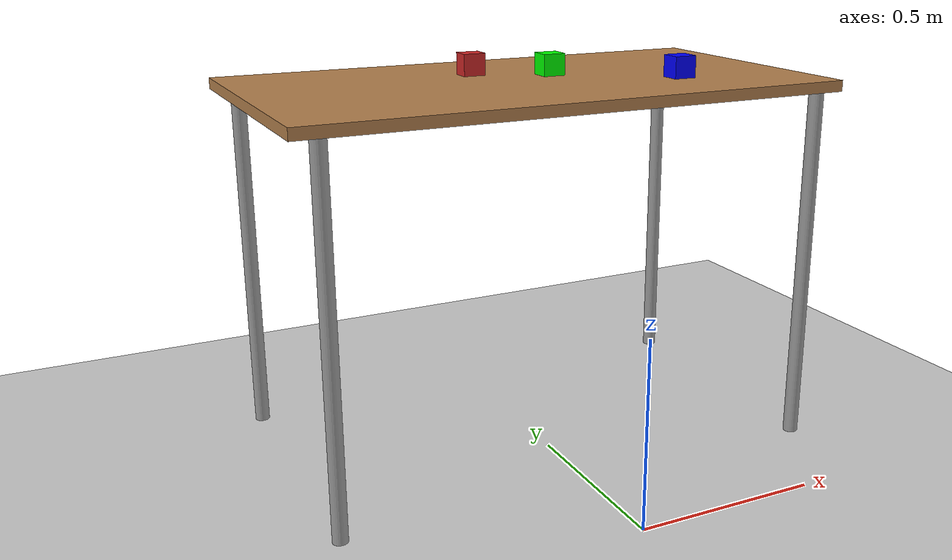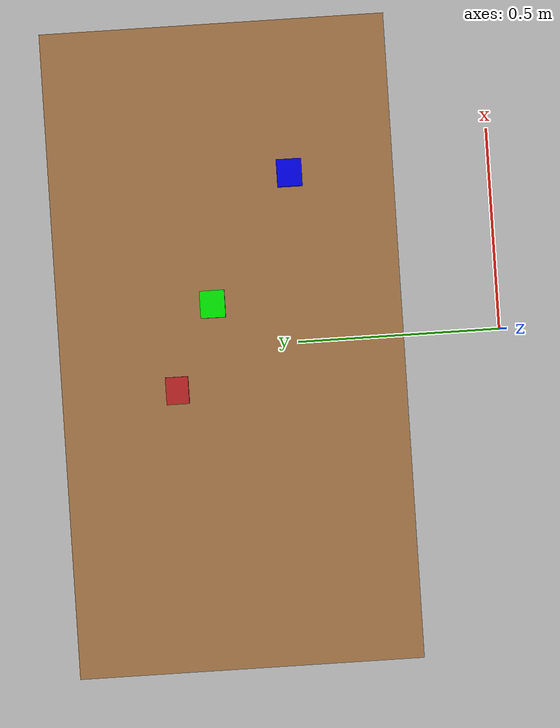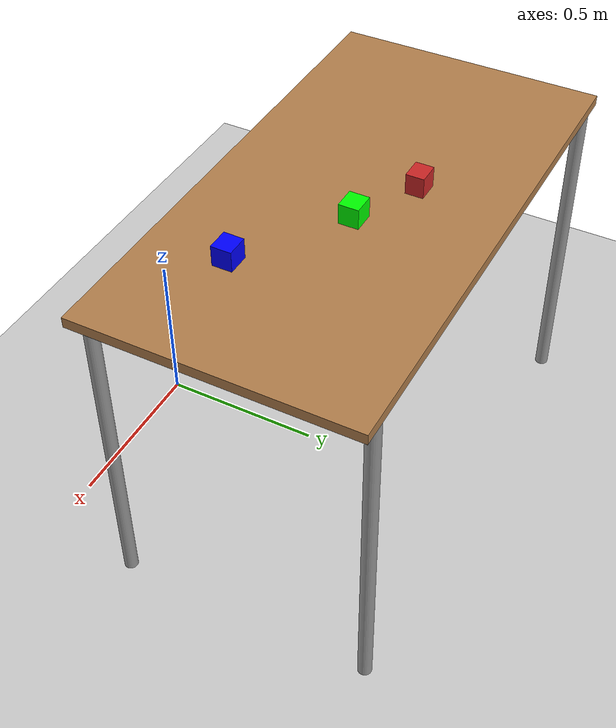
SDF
<sdf version="1.6">
 <world name="default">
  <light name="sun" type="directional">
   <pose>0 0 10 0 -0 0</pose>
   <diffuse>0.8 0.8 0.8 1</diffuse>
   <specular>0.2 0.2 0.2 1</specular>
   <attenuation>
    <range>1000</range>
    <constant>0.9</constant>
    <linear>0.01</linear>
    <quadratic>0.001</quadratic>
   </attenuation>
   <direction>-0.5 0.1 -0.9</direction>
  </light>
  <model name="ground_plane">
   <static>1</static>
   <link name="link">
    <collision name="collision">
     <geometry><plane><normal>0 0 1</normal><size>100 100</size></plane></geometry>
     <surface>
      <contact><collide_bitmask>65535</collide_bitmask></contact>
      <friction><ode><mu>100</mu><mu2>50</mu2></ode></friction>
     </surface>
    </collision>
    <visual name="visual">
     <cast_shadows>0</cast_shadows>
     <geometry><plane><normal>0 0 1</normal><size>100 100</size></plane></geometry>
     <material>
      <script><uri>file://media/materials/scripts/gazebo.material</uri><name>Gazebo/Grey</name></script>
     </material>
    </visual>
   </link>
  </model>
  <gravity>0 0 -9.8</gravity>
  <magnetic_field>6e-06 2.3e-05 -4.2e-05</magnetic_field>
  <atmosphere type="adiabatic"/>
  <physics name="default_physics" default="0" type="ode">
   <max_step_size>0.001</max_step_size>
   <real_time_factor>1</real_time_factor>
   <real_time_update_rate>1000</real_time_update_rate>
  </physics>
  <scene><ambient>0.4 0.4 0.4 1</ambient><background>0.7 0.7 0.7 1</background><shadows>1</shadows></scene>
  <audio><device>default</device></audio>
  <spherical_coordinates>
   <surface_model>EARTH_WGS84</surface_model>
   <latitude_deg>0</latitude_deg>
   <longitude_deg>0</longitude_deg>
   <elevation>0</elevation>
   <heading_deg>0</heading_deg>
  </spherical_coordinates>
  <model name="table">
   <static>1</static>
   <link name="link">
    <collision name="surface">
     <pose>0 0 1 0 -0 0</pose>
     <geometry><box><size>1.5 0.8 0.03</size></box></geometry>
     <surface><friction><ode><mu>0.6</mu><mu2>0.6</mu2></ode></friction></surface>
    </collision>
    <visual name="visual1">
     <pose>0 0 1 0 -0 0</pose>
     <geometry><box><size>1.5 0.8 0.03</size></box></geometry>
     <material>
      <script><uri>file://media/materials/scripts/gazebo.material</uri><name>Gazebo/Wood</name></script>
     </material>
    </visual>
    <collision name="front_left_leg">
     <pose>0.68 0.38 0.5 0 -0 0</pose>
     <geometry><cylinder><radius>0.02</radius><length>1</length></cylinder></geometry>
    </collision>
    <visual name="front_left_leg">
     <pose>0.68 0.38 0.5 0 -0 0</pose>
     <geometry><cylinder><radius>0.02</radius><length>1</length></cylinder></geometry>
     <material>
      <script><uri>file://media/materials/scripts/gazebo.material</uri><name>Gazebo/Grey</name></script>
     </material>
    </visual>
    <collision name="front_right_leg">
     <pose>0.68 -0.38 0.5 0 -0 0</pose>
     <geometry><cylinder><radius>0.02</radius><length>1</length></cylinder></geometry>
    </collision>
    <visual name="front_right_leg">
     <pose>0.68 -0.38 0.5 0 -0 0</pose>
     <geometry><cylinder><radius>0.02</radius><length>1</length></cylinder></geometry>
     <material>
      <script><uri>file://media/materials/scripts/gazebo.material</uri><name>Gazebo/Grey</name></script>
     </material>
    </visual>
    <collision name="back_right_leg">
     <pose>-0.68 -0.38 0.5 0 -0 0</pose>
     <geometry><cylinder><radius>0.02</radius><length>1</length></cylinder></geometry>
    </collision>
    <visual name="back_right_leg">
     <pose>-0.68 -0.38 0.5 0 -0 0</pose>
     <geometry><cylinder><radius>0.02</radius><length>1</length></cylinder></geometry>
     <material>
      <script><uri>file://media/materials/scripts/gazebo.material</uri><name>Gazebo/Grey</name></script>
     </material>
    </visual>
    <collision name="back_left_leg">
     <pose>-0.68 0.38 0.5 0 -0 0</pose>
     <geometry><cylinder><radius>0.02</radius><length>1</length></cylinder></geometry>
    </collision>
    <visual name="back_left_leg">
     <pose>-0.68 0.38 0.5 0 -0 0</pose>
     <geometry><cylinder><radius>0.02</radius><length>1</length></cylinder></geometry>
     <material>
      <script><uri>file://media/materials/scripts/gazebo.material</uri><name>Gazebo/Grey</name></script>
     </material>
    </visual>
   </link>
   <pose>1.8e-05 0.659275 0 0 -0 0</pose>
  </model>
  <model name="unit_box_blue">
   <link name="link">
    <inertial>
     <mass>0.1</mass>
     <inertia>
      <ixx>5.763e-05</ixx>
      <ixy>0</ixy>
      <ixz>0</ixz>
      <iyy>6.331e-05</iyy>
      <iyz>0</iyz>
      <izz>6.119e-05</izz>
     </inertia>
    </inertial>
    <visual name="visual">
     <geometry><box><size>0.063346 0.05771 0.059872</size></box></geometry>
     <material>
      <script><name>Gazebo/Grey</name><uri>file://media/materials/scripts/gazebo.material</uri></script>
      <ambient>0 0 1 1</ambient>
      <shader type="vertex"><normal_map>__default__</normal_map></shader>
      <diffuse>0.7 0.7 0.7 1</diffuse>
      <specular>0.01 0.01 0.01 1</specular>
      <emissive>0 0 0 1</emissive>
     </material>
    </visual>
    <collision name="collision">
     <geometry><box><size>0.063346 0.05771 0.059872</size></box></geometry>
     <surface>
      <friction>
       <ode><mu>5</mu><mu2>5</mu2><fdir1>0 0 0</fdir1><slip1>0</slip1><slip2>0</slip2></ode>
       <torsional>
        <coefficient>1</coefficient>
        <patch_radius>0</patch_radius>
        <surface_radius>0</surface_radius>
        <use_patch_radius>1</use_patch_radius>
        <ode><slip>0</slip></ode>
       </torsional>
      </friction>
      <bounce><restitution_coefficient>0</restitution_coefficient><threshold>1e+06</threshold></bounce>
      <contact>
       <collide_without_contact>0</collide_without_contact>
       <collide_without_contact_bitmask>1</collide_without_contact_bitmask>
       <collide_bitmask>1</collide_bitmask>
       <ode>
        <soft_cfm>0</soft_cfm>
        <soft_erp>0.2</soft_erp>
        <kp>1e+13</kp>
        <kd>1</kd>
        <max_vel>0.01</max_vel>
        <min_depth>0</min_depth>
       </ode>
       <bullet>
        <split_impulse>1</split_impulse>
        <split_impulse_penetration_threshold>-0.01</split_impulse_penetration_threshold>
        <soft_cfm>0</soft_cfm>
        <soft_erp>0.2</soft_erp>
        <kp>1e+13</kp>
        <kd>1</kd>
       </bullet>
      </contact>
     </surface>
    </collision>
   </link>
   <static>0</static>
   <pose>0.392162 0.500043 1.04493 -4e-06 -4.6e-05 -0.003133</pose>
  </model>
  <model name="package_box_red">
   <link name="link">
    <inertial>
     <mass>1</mass>
     <inertia>
      <ixx>0.166667</ixx>
      <ixy>0</ixy>
      <ixz>0</ixz>
      <iyy>0.166667</iyy>
      <iyz>0</iyz>
      <izz>0.166667</izz>
     </inertia>
    </inertial>
    <visual name="visual">
     <geometry><box><size>0.0631248 0.0523931 0.0604299</size></box></geometry>
     <material>
      <script><name>Gazebo/Red</name><uri>file://media/materials/scripts/gazebo.material</uri></script>
      <shader type="pixel"><normal_map>__default__</normal_map></shader>
      <ambient>1 0 0 1</ambient>
      <diffuse>1 0 0 1</diffuse>
      <specular>0.1 0.1 0.1 1</specular>
      <emissive>0 0 0 0</emissive>
     </material>
    </visual>
    <collision name="collision">
     <geometry><box><size>0.0631248 0.0523931 0.0604299</size></box></geometry>
     <surface>
      <friction>
       <ode><mu>1</mu><mu2>1</mu2><fdir1>0 0 0</fdir1><slip1>0</slip1><slip2>0</slip2></ode>
       <torsional>
        <coefficient>1</coefficient>
        <patch_radius>0</patch_radius>
        <surface_radius>0</surface_radius>
        <use_patch_radius>1</use_patch_radius>
        <ode><slip>0</slip></ode>
       </torsional>
      </friction>
      <bounce><restitution_coefficient>0</restitution_coefficient><threshold>1e+06</threshold></bounce>
      <contact>
       <collide_without_contact>0</collide_without_contact>
       <collide_without_contact_bitmask>1</collide_without_contact_bitmask>
       <collide_bitmask>1</collide_bitmask>
       <ode>
        <soft_cfm>0</soft_cfm>
        <soft_erp>0.2</soft_erp>
        <kp>1e+13</kp>
        <kd>1</kd>
        <max_vel>0.01</max_vel>
        <min_depth>0</min_depth>
       </ode>
       <bullet>
        <split_impulse>1</split_impulse>
        <split_impulse_penetration_threshold>-0.01</split_impulse_penetration_threshold>
        <soft_cfm>0</soft_cfm>
        <soft_erp>0.2</soft_erp>
        <kp>1e+13</kp>
        <kd>1</kd>
       </bullet>
      </contact>
     </surface>
    </collision>
   </link>
   <static>0</static>
   <pose>-0.094764 0.790808 1.04522 9e-06 -7e-06 3.3e-05</pose>
  </model>
  <model name="unit_box_blue_clone">
   <link name="link">
    <inertial>
     <mass>0.1</mass>
     <inertia>
      <ixx>5.763e-05</ixx>
      <ixy>0</ixy>
      <ixz>0</ixz>
      <iyy>6.331e-05</iyy>
      <iyz>0</iyz>
      <izz>6.119e-05</izz>
     </inertia>
    </inertial>
    <visual name="visual">
     <geometry><box><size>0.063346 0.05771 0.059872</size></box></geometry>
     <material>
      <script><name>Gazebo/Grey</name><uri>file://media/materials/scripts/gazebo.material</uri></script>
      <ambient>0 1 0 1</ambient>
      <shader type="vertex"><normal_map>__default__</normal_map></shader>
      <diffuse>0.7 0.7 0.7 1</diffuse>
      <specular>0.01 0.01 0.01 1</specular>
      <emissive>0 0 0 1</emissive>
     </material>
    </visual>
    <collision name="collision">
     <geometry><box><size>0.063346 0.05771 0.059872</size></box></geometry>
     <surface>
      <friction>
       <ode><mu>5</mu><mu2>5</mu2><fdir1>0 0 0</fdir1><slip1>0</slip1><slip2>0</slip2></ode>
       <torsional>
        <coefficient>1</coefficient>
        <patch_radius>0</patch_radius>
        <surface_radius>0</surface_radius>
        <use_patch_radius>1</use_patch_radius>
        <ode><slip>0</slip></ode>
       </torsional>
      </friction>
      <bounce><restitution_coefficient>0</restitution_coefficient><threshold>1e+06</threshold></bounce>
      <contact>
       <collide_without_contact>0</collide_without_contact>
       <collide_without_contact_bitmask>1</collide_without_contact_bitmask>
       <collide_bitmask>1</collide_bitmask>
       <ode>
        <soft_cfm>0</soft_cfm>
        <soft_erp>0.2</soft_erp>
        <kp>1e+13</kp>
        <kd>1</kd>
        <max_vel>0.01</max_vel>
        <min_depth>0</min_depth>
       </ode>
       <bullet>
        <split_impulse>1</split_impulse>
        <split_impulse_penetration_threshold>-0.01</split_impulse_penetration_threshold>
        <soft_cfm>0</soft_cfm>
        <soft_erp>0.2</soft_erp>
        <kp>1e+13</kp>
        <kd>1</kd>
       </bullet>
      </contact>
     </surface>
    </collision>
   </link>
   <static>0</static>
   <pose>0.099849 0.69699 1.04494 0 0 -0.003133</pose>
  </model>
 </world>
</sdf>
